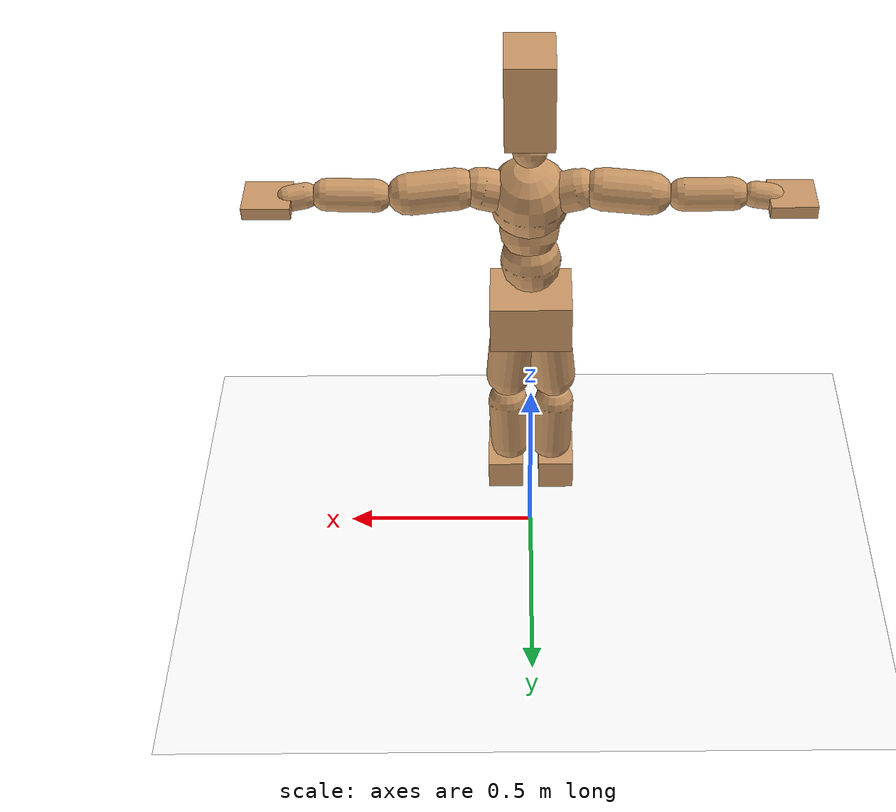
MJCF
<mujoco model="humanoid">
  <option integrator="implicitfast" />

  <visual>
    <global offwidth="1280" offheight="960" />
    <headlight active="1" ambient="0.34 0.34 0.34" diffuse="0.5 0.5 0.5" />
  </visual>

  <default>
    <joint damping="2" stiffness="2" armature="0.01" limited="true" solimplimit="0 .99 .01" />
    <geom condim="1" friction="0.7 0.005 0.0001" solimp=".99 .99 .003" solref="0.015 1" margin="0.001" rgba="0.8 0.6 .4 1" />
    <default class="smplcontact">
      <geom condim="3" friction="1. 0.005 0.0001" solref="0.015 1" solimp="0.98 0.98 0.001" priority="1" />
    </default>
    <default class="stiff_medium">
      <joint stiffness="10" />
    </default>
    <default class="stiff_medium_higher">
      <joint stiffness="50" />
    </default>
    <default class="stiff_high">
      <joint stiffness="100" />
    </default>
  </default>

  <asset>
    <texture type="skybox" builtin="gradient" rgb1="0.99 0.99 0.99" rgb2="0.608 0.828 0.892" width="100" />
    <texture builtin="flat" height="1278" mark="cross" markrgb="1 1 1" name="texgeom" random="0.01" rgb1="0.8 0.6 0.4" rgb2="0.8 0.6 0.4" type="cube" width="127" />
    <texture name="texplane" type="2d" builtin="checker" markrgb="1 1 1" rgb1="0.756 0.772 0.76" rgb2="0.6 0.6 0.6" width="100" height="100" />
    <material name="MatPlane" reflectance="0.5" texture="texplane" texrepeat="1 1" texuniform="true" />
    <material name="geom" texture="texgeom" texuniform="true" />
  </asset>

  <worldbody>
    <light name="tracking_light" pos="0 0 7" dir="0 0 -1" directional="true" cutoff="100" exponent="1" diffuse="1 1 1" specular="0.1 0.1 0.1" mode="trackcom" />
    <camera name="back" pos="0 3 2.4" xyaxes="-1 0 0 0 -1 2" mode="trackcom" />
    <camera name="side" pos="-3 0 2.4" xyaxes="0 -1 0 1 0 2" mode="trackcom" />
    <camera name="front_side" pos="-2.8 -2.8 0.8" xyaxes="0.5 -0.5 0 0.1 0.1 1" mode="trackcom" />
    <geom condim="3" name="floor" pos="0 0 0" rgba="1 1 1 1" size="100 100 .2" type="plane" material="MatPlane" />
    <body name="Pelvis" pos="-0.0018 -0.2233 0.603363" euler="90 0 0">
      <site name="Pelvis" size="0.01" />
      <freejoint name="Pelvis" />
      <geom type="box" pos="-0.0000 -0.0121 -0.0055" size="0.1069 0.0722 0.083" quat="1.0000 0.0000 0.0000 0.0000" density="3165.830099" name="Pelvis" />
      <body name="L_Hip" pos="0.0434375 -0.057125 -0.00425">
        <joint name="L_Hip_x" type="hinge" pos="0 0 0" axis="1 0 0" stiffness="4.682612346938775" range="-160.0 22.92" class="stiff_medium" damping="5.761376063259234" armature="0.0031505162487152146"/>
        <joint name="L_Hip_y" type="hinge" pos="0 0 0" axis="0 1 0" stiffness="4.729285204081632" range="-70.0 70.0" class="stiff_medium" damping="5.2271909514404244" armature="0.005777516910851338"/>
        <joint name="L_Hip_z" type="hinge" pos="0 0 0" axis="0 0 1" stiffness="4.725288673469388" range="-28.65 90.0" class="stiff_medium" damping="3.855798953286389" armature="0.003146302077085308"/>
        <geom type="capsule" density="2040.816327" fromto="0.0043125 -0.046875 -0.0005625 0.017125 -0.187625 -0.00225" size="0.0615" name="L_Hip" />
        <body name="L_Knee" pos="0.0214375 -0.2345 -0.0028125">
          <joint name="L_Knee_x" type="hinge" pos="0 0 0" axis="1 0 0" range="-5.16 171.89" damping="3.314776765383124" armature="0.003468205500974928" stiffness="0.9900423469387756"/>
          <joint name="L_Knee_y" type="hinge" pos="0 0 0" axis="0 1 0" range="-4.58 6.88" damping="4.406653617352897" armature="0.006327520325715419" stiffness="0.9590346565349543"/>
          <joint name="L_Knee_z" type="hinge" pos="0 0 0" axis="0 0 1" range="-6.88 4.58" damping="3.327252622723649" armature="0.003445606353385671" stiffness="1.0040513265306124"/>
          <geom type="capsule" density="1234.567901" fromto="-0.0016875 -0.04975 -0.0054375 -0.0068125 -0.199 -0.021875" size="0.0541" name="L_Knee" />
          <body name="L_Ankle" pos="-0.0085 -0.24875 -0.0273125">
            <joint name="L_Ankle_x" type="hinge" pos="0 0 0" axis="1 0 0" range="-45.84 45.84" class="stiff_medium" damping="3.671773608490062" armature="0.005991965080890725" stiffness="6.25"/>
            <joint name="L_Ankle_y" type="hinge" pos="0 0 0" axis="0 1 0" range="-74.48 22.92" class="stiff_medium" damping="1.8585891029846908" armature="0.006141072806637222" stiffness="6.25"/>
            <joint name="L_Ankle_z" type="hinge" pos="0 0 0" axis="0 0 1" range="-4.58 4.58" class="stiff_medium" damping="4.001717943795492" armature="0.007117220667419919" stiffness="6.25"/>
            <geom type="box" pos="0.0145625 -0.0149375 0.015125" size="0.0483 0.0464 0.085" quat="1.0000 0.0000 0.0000 0.0000" density="449.071558" name="L_Ankle" class="smplcontact" />
            <body name="L_Toe" pos="0.0165 -0.034875 0.0745625">
              <joint name="L_Toe_x" type="hinge" pos="0 0 0" axis="1 0 0" range="-91.67 22.92" armature="0.007683229914737026" damping="1.3859319891986968" stiffness="1.25"/>
              <joint name="L_Toe_y" type="hinge" pos="0 0 0" axis="0 1 0" range="-4.58 4.58" armature="0.008367648440754674" damping="1.446344395428927" stiffness="1.25"/>
              <joint name="L_Toe_z" type="hinge" pos="0 0 0" axis="0 0 1" range="-4.58 4.58" armature="0.00975150586170467" damping="1.5613700603720335" stiffness="1.25"/>
              <geom type="box" pos="-0.001875 0.0034375 0.0155" size="0.0478 0.02 0.0496" quat="1.0000 0.0000 0.0000 0.0000" density="423.206892" name="L_Toe" class="smplcontact" />
            </body>
          </body>
        </body>
      </body>
      <body name="R_Hip" pos="-0.0423125 -0.0565625 -0.0026875">
        <joint name="R_Hip_x" type="hinge" pos="0 0 0" axis="1 0 0" stiffness="4.682612346938775" range="-160.0 22.92" class="stiff_medium" damping="5.761376063259234" armature="0.0031505162487152146"/>
        <joint name="R_Hip_y" type="hinge" pos="0 0 0" axis="0 1 0" stiffness="4.729285204081632" range="-70.0 70.0" class="stiff_medium" damping="5.2271909514404244" armature="0.005777516910851338"/>
        <joint name="R_Hip_z" type="hinge" pos="0 0 0" axis="0 0 1" stiffness="4.725288673469388" range="-90.0 28.65" class="stiff_medium" damping="3.855798953286389" armature="0.003146302077085308"/>
        <geom type="capsule" density="2040.816327" fromto="-0.0048125 -0.0478125 -0.001125 -0.019125 -0.191312 -0.0044375" size="0.0606" name="R_Hip" />
        <body name="R_Knee" pos="-0.0239375 -0.239125 -0.0055625">
          <joint name="R_Knee_x" type="hinge" pos="0 0 0" axis="1 0 0" range="-5.16 171.89" damping="3.314776765383124" armature="0.003468205500974928" stiffness="0.9900423469387756"/>
          <joint name="R_Knee_y" type="hinge" pos="0 0 0" axis="0 1 0" range="-6.88 4.58" damping="4.406653617352897" armature="0.006327520325715419" stiffness="0.9590346565349543"/>
          <joint name="R_Knee_z" type="hinge" pos="0 0 0" axis="0 0 1" range="-4.58 6.88" damping="3.327252622723649" armature="0.003445606353385671" stiffness="1.0040513265306124"/>
          <geom type="capsule" density="1234.567901" fromto="0.002 -0.0498125 -0.0053125 0.007875 -0.199187 -0.021125" size="0.0541" name="R_Knee" />
          <body name="R_Ankle" pos="0.009875 -0.249 -0.0264375">
            <joint name="R_Ankle_x" type="hinge" pos="0 0 0" axis="1 0 0" range="-45.84 45.84" class="stiff_medium" damping="3.671773608490062" armature="0.005991965080890725" stiffness="6.25"/>
            <joint name="R_Ankle_y" type="hinge" pos="0 0 0" axis="0 1 0" range="-22.92 74.48" class="stiff_medium" damping="1.8585891029846908" armature="0.006141072806637222" stiffness="6.25"/>
            <joint name="R_Ankle_z" type="hinge" pos="0 0 0" axis="0 0 1" range="-4.58 4.58" class="stiff_medium" damping="4.001717943795492" armature="0.007117220667419919" stiffness="6.25"/>
            <geom type="box" pos="-0.01325 -0.010875 0.016" size="0.0483 0.0478 0.0865" quat="1.0000 0.0000 0.0000 0.0000" density="434.700981" name="R_Ankle" class="smplcontact" />
            <body name="R_Toe" pos="-0.015875 -0.0300625 0.0770625">
              <joint name="R_Toe_x" type="hinge" pos="0 0 0" axis="1 0 0" range="-91.67 22.92" armature="0.007683229914737026" damping="1.3859319891986968" stiffness="1.25"/>
              <joint name="R_Toe_y" type="hinge" pos="0 0 0" axis="0 1 0" range="-4.58 4.58" armature="0.008367648440754674" damping="1.446344395428927" stiffness="1.25"/>
              <joint name="R_Toe_z" type="hinge" pos="0 0 0" axis="0 0 1" range="-4.58 4.58" armature="0.00975150586170467" damping="1.5613700603720335" stiffness="1.25"/>
              <geom type="box" pos="0.002625 0.0028125 0.0141875" size="0.0479 0.0216 0.0493" quat="1.0000 0.0000 0.0000 0.0000" density="407.384095" name="R_Toe" class="smplcontact" />
            </body>
          </body>
        </body>
      </body>
      <body name="Torso" pos="-0.0025 0.109 -0.0267">
        <joint name="Torso_x" type="hinge" pos="0 0 0" axis="1 0 0" range="-25.78 57.3" class="stiff_medium" damping="13.810652204593474" armature="0.00909250101895923" stiffness="9.323146326530612"/>
        <joint name="Torso_y" type="hinge" pos="0 0 0" axis="0 1 0" range="-57.3 57.3" class="stiff_high" damping="14.331171543099824" armature="0.005453647751768045" stiffness="94.1491306122449"/>
        <joint name="Torso_z" type="hinge" pos="0 0 0" axis="0 0 1" range="-34.38 34.38" class="stiff_high" damping="17.29833641675788" armature="0.007846444358372215" stiffness="95.34014042553191"/>
        <geom type="capsule" density="2040.816327" fromto="0.0025 0.0608 0.0005 0.003 0.0743 0.0006" size="0.0769" name="Torso" />
        <body name="Spine" pos="0.0055 0.1352 0.0011">
          <joint name="Spine_x" type="hinge" pos="0 0 0" axis="1 0 0" stiffness="9.198122653061224" range="-25.78 57.3" class="stiff_medium" damping="13.625447932409394" armature="0.008970566343267757"/>
          <joint name="Spine_y" type="hinge" pos="0 0 0" axis="0 1 0" stiffness="9.181372040816328" range="-57.3 57.3" class="stiff_high" damping="5.644321396937274" armature="0.005421705337566874"/>
          <joint name="Spine_z" type="hinge" pos="0 0 0" axis="0 0 1" stiffness="18.1392375" range="-34.38 34.38" class="stiff_high" damping="9.559994320421612" armature="0.00699783575418983"/>
          <geom type="capsule" density="2040.816327" fromto="0.0007 0.0238 0.0114 0.0008 0.0291 0.014" size="0.0755" name="Spine" />
          <body name="Chest" pos="0.0015 0.0529 0.0254">
            <joint name="Chest_x" type="hinge" pos="0 0 0" axis="1 0 0" stiffness="8.90027425531915" range="-25.78 57.3" class="stiff_medium" damping="13.356132991200658" armature="0.00890790470102789"/>
            <joint name="Chest_y" type="hinge" pos="0 0 0" axis="0 1 0" stiffness="8.011889047619047" range="-57.3 57.3" class="stiff_high" damping="5.266225064762502" armature="0.005408588385784328"/>
            <joint name="Chest_z" type="hinge" pos="0 0 0" axis="0 0 1" stiffness="18.1318547826087" range="-34.38 34.38" class="stiff_high" damping="9.30245805793391" armature="0.0066285832124010555"/>
            <geom type="capsule" density="2040.816327" fromto="-0.0009 0.0682 -0.0173 -0.001 0.0833 -0.0212" size="0.1002" name="Chest" />
            <body name="Neck" pos="-0.0028 0.2139 -0.0429">
              <joint name="Neck_x" type="hinge" pos="0 0 0" axis="1 0 0" range="-28.65 57.3" class="stiff_medium_higher" damping="10.000000000000004" armature="0.010000000000000009" stiffness="50.0"/>
              <joint name="Neck_y" type="hinge" pos="0 0 0" axis="0 1 0" range="-40.11 40.11" class="stiff_medium_higher" damping="10.0" armature="0.01" stiffness="50.0"/>
              <joint name="Neck_z" type="hinge" pos="0 0 0" axis="0 0 1" range="-40.11 40.11" class="stiff_medium_higher" damping="10.0" armature="0.010000000000000002" stiffness="50.0"/>
              <geom type="capsule" density="1000" fromto="0.001 0.013 0.0103 0.0041 0.052 0.0411" size="0.0436" name="Neck" />
              <body name="Head" pos="0.0052 0.065 0.0513">
                <joint name="Head_x" type="hinge" pos="0 0 0" axis="1 0 0" range="-28.65 57.3" class="stiff_medium_higher" damping="2.0000000000000027" armature="0.010000000000000026" stiffness="50.0"/>
                <joint name="Head_y" type="hinge" pos="0 0 0" axis="0 1 0" range="-40.11 40.11" class="stiff_medium_higher" damping="2.0" armature="0.01" stiffness="50.0"/>
                <joint name="Head_z" type="hinge" pos="0 0 0" axis="0 0 1" range="-40.11 40.11" class="stiff_medium_higher" damping="2.0000000000000027" armature="0.010000000000000026" stiffness="50.0"/>
                <geom type="box" pos="-0.0042 0.0876 -0.0116" size="0.0606 0.1154 0.076" quat="1.0000 0.0000 0.0000 0.0000" density="1018.069894" name="Head" />
                <geom type="capsule" name="nose" size="0.02 0.01" pos="0 0.07 0.05" quat="1 0 0 0" mass="0" contype="0" conaffinity="0" />
              </body>
            </body>
            <body name="L_Thorax" pos="0.06107 0.0943175 -0.0264275">
              <joint name="L_Thorax_x" type="hinge" pos="0 0 0" axis="1 0 0" range="-10.89 4.58" class="stiff_medium_higher" damping="13.430877912506638" armature="0.0067438731053503" stiffness="33.43562346938776"/>
              <joint name="L_Thorax_y" type="hinge" pos="0 0 0" axis="0 1 0" range="-28.65 17.19" class="stiff_medium_higher" damping="11.84395870975866" armature="0.0052794554835980945" stiffness="33.21350051020408"/>
              <joint name="L_Thorax_z" type="hinge" pos="0 0 0" axis="0 0 1" range="-31.51 40.11" class="stiff_medium_higher" damping="11.842904847336026" armature="0.005278125365951001" stiffness="33.215958673469395"/>
              <geom type="capsule" density="1000" fromto="0.014105 0.0047275 -0.001395 0.05642 0.01891 -0.0055025" size="0.0521" name="L_Thorax" />
              <body name="L_Shoulder" pos="0.070525 0.0236375 -0.0068975">
                <joint name="L_Shoulder_x" type="hinge" pos="0 0 0" axis="1 0 0" range="-97.4 97.4" class="stiff_medium" damping="4.20057386962352" armature="0.0072938747131825335" stiffness="6.719801632653062"/>
                <joint name="L_Shoulder_y" type="hinge" pos="0 0 0" axis="0 1 0" range="-108.86 80.21" class="stiff_medium" damping="3.5719924695592944" armature="0.005322246430600953" stiffness="6.659223469387755"/>
                <joint name="L_Shoulder_z" type="hinge" pos="0 0 0" axis="0 0 1" range="-97.4 85.94" class="stiff_medium" damping="3.5723414695273763" armature="0.0053204314495063935" stiffness="6.662796938775511"/>
                <geom type="capsule" density="1000" fromto="0.0402225 -0.002015 -0.0042625 0.160968 -0.007905 -0.01705" size="0.0517" name="L_Shoulder" />
                <body name="L_Elbow" pos="0.20119 -0.00992 -0.0213125">
                  <joint name="L_Elbow_x" type="hinge" pos="0 0 0" axis="1 0 0" range="-17.19 4.58" damping="3.7512094390014767" armature="0.008221713445805025" stiffness="1.3692106734693876"/>
                  <joint name="L_Elbow_y" type="hinge" pos="0 0 0" axis="0 1 0" range="-180.0 17.19" damping="3.0766314110203545" armature="0.005532912421377139" stiffness="1.368633387755102"/>
                  <joint name="L_Elbow_z" type="hinge" pos="0 0 0" axis="0 0 1" range="-100.84 4.58" damping="3.075083451218571" armature="0.005523383254833454" stiffness="1.3696153673469391"/>
                  <geom type="capsule" density="1000" fromto="0.038595 0.001395 -0.000155 0.154535 0.00558 -0.0006975" size="0.0405" name="L_Elbow" />
                  <body name="L_Wrist" pos="0.19313 0.006975 -0.00093">
                    <joint name="L_Wrist_x" type="hinge" pos="0 0 0" axis="1 0 0" range="-180.0 22.92" armature="0.00860290788009024" damping="1.5994571311849128" stiffness="1.486859530612245"/>
                    <joint name="L_Wrist_y" type="hinge" pos="0 0 0" axis="0 1 0" range="-17.19 17.19" armature="0.0063354376620144825" damping="1.3682982903238996" stiffness="1.4775934285714285"/>
                    <joint name="L_Wrist_z" type="hinge" pos="0 0 0" axis="0 0 1" range="-22.92 22.92" armature="0.0062061994301847645" damping="1.3559819581986159" stiffness="1.4813309591836734"/>
                    <geom type="capsule" density="1000" fromto="0.01302 -0.00124 -0.002325 0.05208 -0.0050375 -0.0093" size="0.0318" name="L_Wrist" class="smplcontact" />
                    <body name="L_Hand" pos="0.0651 -0.006355 -0.0115475">
                      <joint name="L_Hand_x" type="hinge" pos="0 0 0" axis="1 0 0" range="-17.19 17.19" armature="0.009826007646420807" damping="1.7452972154880815" stiffness="1.55"/>
                      <joint name="L_Hand_y" type="hinge" pos="0 0 0" axis="0 1 0" range="-51.57 51.57" armature="0.007895802531703706" damping="1.5645123153328482" stiffness="1.55"/>
                      <joint name="L_Hand_z" type="hinge" pos="0 0 0" axis="0 0 1" range="-91.67 91.67" armature="0.007381279985826352" damping="1.5126786822078802" stiffness="1.55"/>
                      <geom type="box" pos="0.0382075 0.000775 -0.004495" size="0.0585 0.0158 0.0538" quat="1.0000 0.0000 0.0000 0.0000" density="400.552564" name="L_Hand" class="smplcontact" />
                    </body>
                  </body>
                </body>
              </body>
            </body>
            <body name="R_Thorax" pos="-0.063395 0.09207 -0.029915">
              <joint name="R_Thorax_x" type="hinge" pos="0 0 0" axis="1 0 0" range="-10.89 4.58" class="stiff_medium_higher" damping="13.430877912506638" armature="0.0067438731053503" stiffness="33.43562346938776"/>
              <joint name="R_Thorax_y" type="hinge" pos="0 0 0" axis="0 1 0" range="-17.19 28.65" class="stiff_medium_higher" damping="11.84395870975866" armature="0.0052794554835980945" stiffness="33.21350051020408"/>
              <joint name="R_Thorax_z" type="hinge" pos="0 0 0" axis="0 0 1" range="-40.11 31.51" class="stiff_medium_higher" damping="11.842904847336026" armature="0.005278125365951001" stiffness="33.215958673469395"/>
              <geom type="capsule" density="1000" fromto="-0.01488 0.0050375 -0.001395 -0.05952 0.02015 -0.0056575" size="0.0511" name="R_Thorax" />
              <body name="R_Shoulder" pos="-0.0744 0.025265 -0.0070525">
                <joint name="R_Shoulder_x" type="hinge" pos="0 0 0" axis="1 0 0" range="-97.4 97.4" class="stiff_medium" damping="4.20057386962352" armature="0.0072938747131825335" stiffness="6.719801632653062"/>
                <joint name="R_Shoulder_y" type="hinge" pos="0 0 0" axis="0 1 0" range="-80.21 108.86" class="stiff_medium" damping="3.5719924695592944" armature="0.005322246430600953" stiffness="6.659223469387755"/>
                <joint name="R_Shoulder_z" type="hinge" pos="0 0 0" axis="0 0 1" range="-85.94 97.4" class="stiff_medium" damping="3.5723414695273763" armature="0.0053204314495063935" stiffness="6.662796938775511"/>
                <geom type="capsule" density="1000" fromto="-0.0392925 -0.0020925 -0.0033325 -0.157325 -0.0082925 -0.0132525" size="0.0531" name="R_Shoulder" />
                <body name="R_Elbow" pos="-0.196618 -0.0103075 -0.016585">
                  <joint name="R_Elbow_x" type="hinge" pos="0 0 0" axis="1 0 0" range="-17.19 4.58" damping="3.7512094390014767" armature="0.008221713445805025" stiffness="1.3692106734693876"/>
                  <joint name="R_Elbow_y" type="hinge" pos="0 0 0" axis="0 1 0" range="-17.19 180.0" damping="3.0766314110203545" armature="0.005532912421377139" stiffness="1.368633387755102"/>
                  <joint name="R_Elbow_z" type="hinge" pos="0 0 0" axis="0 0 1" range="-4.58 100.84" damping="3.075083451218571" armature="0.005523383254833454" stiffness="1.3696153673469391"/>
                  <geom type="capsule" density="1000" fromto="-0.0396025 0.00124 -0.0008525 -0.158255 0.004805 -0.00341" size="0.0408" name="R_Elbow" />
                  <body name="R_Wrist" pos="-0.197858 0.006045 -0.00434">
                    <joint name="R_Wrist_x" type="hinge" pos="0 0 0" axis="1 0 0" range="-180.0 22.92" armature="0.00860290788009024" damping="1.5994571311849128" stiffness="1.486859530612245"/>
                    <joint name="R_Wrist_y" type="hinge" pos="0 0 0" axis="0 1 0" range="-17.19 17.19" armature="0.0063354376620144825" damping="1.3682982903238996" stiffness="1.4775934285714285"/>
                    <joint name="R_Wrist_z" type="hinge" pos="0 0 0" axis="0 0 1" range="-22.92 22.92" armature="0.0062061994301847645" damping="1.3559819581986159" stiffness="1.4813309591836734"/>
                    <geom type="capsule" density="1000" fromto="-0.0130975 -0.00093 -0.0016275 -0.0524675 -0.0037975 -0.0064325" size="0.0326" name="R_Wrist" class="smplcontact" />
                    <body name="R_Hand" pos="-0.065565 -0.0047275 -0.0079825">
                      <joint name="R_Hand_x" type="hinge" pos="0 0 0" axis="1 0 0" range="-17.19 17.19" armature="0.009826007646420807" damping="1.7452972154880815" stiffness="1.55"/>
                      <joint name="R_Hand_y" type="hinge" pos="0 0 0" axis="0 1 0" range="-51.57 51.57" armature="0.007895802531703706" damping="1.5645123153328482" stiffness="1.55"/>
                      <joint name="R_Hand_z" type="hinge" pos="0 0 0" axis="0 0 1" range="-91.67 91.67" armature="0.007381279985826352" damping="1.5126786822078802" stiffness="1.55"/>
                      <geom type="box" pos="-0.035805 -0.0006975 -0.0061225" size="0.0569 0.0164 0.0546" quat="1.0000 0.0000 0.0000 0.0000" density="403.679611" name="R_Hand" class="smplcontact" />
                    </body>
                  </body>
                </body>
              </body>
            </body>
          </body>
        </body>
      </body>
    </body>
  </worldbody>
  <actuator>
    <general name="L_Hip_x" joint="L_Hip_x" biastype="affine" gainprm="134.5455305788832" biasprm="-100.82823820114426 -84.28702224489795 -0.7681834751012312" ctrllimited="true" ctrlrange="-1 1" forcerange="-168.5740444897959 168.5740444897959" />
    <general name="L_Hip_y" joint="L_Hip_y" biastype="affine" gainprm="104.00241357711633" biasprm="0.0 -85.12713367346939 -1.045438190288085" ctrllimited="true" ctrlrange="-1 1" forcerange="-170.25426734693878 170.25426734693878" />
    <general name="L_Hip_z" joint="L_Hip_z" biastype="affine" gainprm="88.0675601736452" biasprm="45.53682947031718 -85.05519612244898 -0.7711597906572778" ctrllimited="true" ctrlrange="-1 1" forcerange="-170.11039224489795 170.11039224489795" />
    <general name="L_Knee_x" joint="L_Knee_x" biastype="affine" gainprm="137.6700859239888" biasprm="129.64548673316378 -89.1038112244898 -0.828694191345781" ctrllimited="true" ctrlrange="-1 1" forcerange="-178.2076224489796 178.2076224489796" />
    <general name="L_Knee_y" joint="L_Knee_y" biastype="affine" gainprm="8.63194770327106" biasprm="1.7324153331172283 -86.3131190881459 -1.1016634043382243" ctrllimited="true" ctrlrange="-1 1" forcerange="-172.6262381762918 172.6262381762918" />
    <general name="L_Knee_z" joint="L_Knee_z" biastype="affine" gainprm="9.03712757714746" biasprm="-1.8137341559720035 -90.36461938775511 -0.8318131556809123" ctrllimited="true" ctrlrange="-1 1" forcerange="-180.72923877551023 180.72923877551023" />
    <general name="L_Ankle_x" joint="L_Ankle_x" biastype="affine" gainprm="45.003314762673796" biasprm="0.0 -56.25 -1.223924536163354" ctrllimited="true" ctrlrange="-1 1" forcerange="-112.5 112.5" />
    <general name="L_Ankle_y" joint="L_Ankle_y" biastype="affine" gainprm="47.811113196819676" biasprm="-25.309455815482774 -56.25 -1.2390594019897938" ctrllimited="true" ctrlrange="-1 1" forcerange="-112.5 112.5" />
    <general name="L_Ankle_z" joint="L_Ankle_z" biastype="affine" gainprm="4.496404485450391" biasprm="0.0 -56.25 -1.333905981265164" ctrllimited="true" ctrlrange="-1 1" forcerange="-112.5 112.5" />
    <general name="L_Toe_x" joint="L_Toe_x" biastype="affine" gainprm="44.999387771856796" biasprm="-26.998061866787282 -45.0 -0.5543727956794787" ctrllimited="true" ctrlrange="-1 1" forcerange="-90.0 90.0" />
    <general name="L_Toe_y" joint="L_Toe_y" biastype="affine" gainprm="3.597123588360313" biasprm="0.0 -45.0 -0.5785377581715708" ctrllimited="true" ctrlrange="-1 1" forcerange="-90.0 90.0" />
    <general name="L_Toe_z" joint="L_Toe_z" biastype="affine" gainprm="3.597123588360313" biasprm="0.0 -45.0 -0.6245480241488135" ctrllimited="true" ctrlrange="-1 1" forcerange="-90.0 90.0" />
    <general name="R_Hip_x" joint="R_Hip_x" biastype="affine" gainprm="134.5455305788832" biasprm="-100.82823820114426 -84.28702224489795 -0.7681834751012312" ctrllimited="true" ctrlrange="-1 1" forcerange="-168.5740444897959 168.5740444897959" />
    <general name="R_Hip_y" joint="R_Hip_y" biastype="affine" gainprm="104.00241357711633" biasprm="0.0 -85.12713367346939 -1.045438190288085" ctrllimited="true" ctrlrange="-1 1" forcerange="-170.25426734693878 170.25426734693878" />
    <general name="R_Hip_z" joint="R_Hip_z" biastype="affine" gainprm="88.0675601736452" biasprm="-45.53682947031718 -85.05519612244898 -0.7711597906572778" ctrllimited="true" ctrlrange="-1 1" forcerange="-170.11039224489795 170.11039224489795" />
    <general name="R_Knee_x" joint="R_Knee_x" biastype="affine" gainprm="137.6700859239888" biasprm="129.64548673316378 -89.1038112244898 -0.828694191345781" ctrllimited="true" ctrlrange="-1 1" forcerange="-178.2076224489796 178.2076224489796" />
    <general name="R_Knee_y" joint="R_Knee_y" biastype="affine" gainprm="8.63194770327106" biasprm="-1.7324153331172283 -86.3131190881459 -1.1016634043382243" ctrllimited="true" ctrlrange="-1 1" forcerange="-172.6262381762918 172.6262381762918" />
    <general name="R_Knee_z" joint="R_Knee_z" biastype="affine" gainprm="9.03712757714746" biasprm="1.8137341559720035 -90.36461938775511 -0.8318131556809123" ctrllimited="true" ctrlrange="-1 1" forcerange="-180.72923877551023 180.72923877551023" />
    <general name="R_Ankle_x" joint="R_Ankle_x" biastype="affine" gainprm="45.003314762673796" biasprm="0.0 -56.25 -1.223924536163354" ctrllimited="true" ctrlrange="-1 1" forcerange="-112.5 112.5" />
    <general name="R_Ankle_y" joint="R_Ankle_y" biastype="affine" gainprm="47.811113196819676" biasprm="25.309455815482774 -56.25 -1.2390594019897938" ctrllimited="true" ctrlrange="-1 1" forcerange="-112.5 112.5" />
    <general name="R_Ankle_z" joint="R_Ankle_z" biastype="affine" gainprm="4.496404485450391" biasprm="0.0 -56.25 -1.333905981265164" ctrllimited="true" ctrlrange="-1 1" forcerange="-112.5 112.5" />
    <general name="R_Toe_x" joint="R_Toe_x" biastype="affine" gainprm="44.999387771856796" biasprm="-26.998061866787282 -45.0 -0.5543727956794787" ctrllimited="true" ctrlrange="-1 1" forcerange="-90.0 90.0" />
    <general name="R_Toe_y" joint="R_Toe_y" biastype="affine" gainprm="3.597123588360313" biasprm="0.0 -45.0 -0.5785377581715708" ctrllimited="true" ctrlrange="-1 1" forcerange="-90.0 90.0" />
    <general name="R_Toe_z" joint="R_Toe_z" biastype="affine" gainprm="3.597123588360313" biasprm="0.0 -45.0 -0.6245480241488135" ctrllimited="true" ctrlrange="-1 1" forcerange="-90.0 90.0" />
    <general name="Torso_x" joint="Torso_x" biastype="affine" gainprm="162.2249324590423" biasprm="61.54706152032995 -223.7555118367347 -3.682840587891593" ctrllimited="true" ctrlrange="-1 1" forcerange="-335.63326775510205 335.63326775510205" />
    <general name="Torso_y" joint="Torso_y" biastype="affine" gainprm="225.974557843997" biasprm="0.0 -225.95791346938776 -2.8662343086199646" ctrllimited="true" ctrlrange="-1 1" forcerange="-338.93687020408163 338.93687020408163" />
    <general name="Torso_z" joint="Torso_z" biastype="affine" gainprm="137.29991517080745" biasprm="0.0 -228.8163370212766 -3.459667283351576" ctrllimited="true" ctrlrange="-1 1" forcerange="-343.2245055319149 343.2245055319149" />
    <general name="Spine_x" joint="Spine_x" biastype="affine" gainprm="160.04949122128795" biasprm="60.721713568789056 -220.7549436734694 -3.6334527819758384" ctrllimited="true" ctrlrange="-1 1" forcerange="-331.1324155102041 331.1324155102041" />
    <general name="Spine_y" joint="Spine_y" biastype="affine" gainprm="220.36916048323718" biasprm="0.0 -220.35292897959184 -2.822160698468637" ctrllimited="true" ctrlrange="-1 1" forcerange="-330.52939346938774 330.52939346938774" />
    <general name="Spine_z" joint="Spine_z" biastype="affine" gainprm="130.61213036278338" biasprm="0.0 -217.67085 -3.186664773473871" ctrllimited="true" ctrlrange="-1 1" forcerange="-326.506275 326.506275" />
    <general name="Chest_x" joint="Chest_x" biastype="affine" gainprm="154.86685925194476" biasprm="58.7554574340551 -213.6065821276596 -3.5616354643201755" ctrllimited="true" ctrlrange="-1 1" forcerange="-320.4098731914894 320.4098731914894" />
    <general name="Chest_y" joint="Chest_y" biastype="affine" gainprm="192.29950114859662" biasprm="0.0 -192.28533714285712 -2.633112532381251" ctrllimited="true" ctrlrange="-1 1" forcerange="-288.4280057142857 288.4280057142857" />
    <general name="Chest_z" joint="Chest_z" biastype="affine" gainprm="130.55897088205305" biasprm="0.0 -217.58225739130438 -3.1008193526446366" ctrllimited="true" ctrlrange="-1 1" forcerange="-326.37338608695654 326.37338608695654" />
    <general name="Neck_x" joint="Neck_x" biastype="affine" gainprm="27.00198885760427" biasprm="9.000662952534757 -36.0 -0.8000000000000004" ctrllimited="true" ctrlrange="-1 1" forcerange="-72.0 72.0" />
    <general name="Neck_y" joint="Neck_y" biastype="affine" gainprm="25.20185626709732" biasprm="0.0 -36.0 -0.8" ctrllimited="true" ctrlrange="-1 1" forcerange="-72.0 72.0" />
    <general name="Neck_z" joint="Neck_z" biastype="affine" gainprm="25.20185626709732" biasprm="0.0 -36.0 -0.8" ctrllimited="true" ctrlrange="-1 1" forcerange="-72.0 72.0" />
    <general name="Head_x" joint="Head_x" biastype="affine" gainprm="18.001325905069514" biasprm="6.000441968356505 -24.0 -0.8000000000000012" ctrllimited="true" ctrlrange="-1 1" forcerange="-48.0 48.0" />
    <general name="Head_y" joint="Head_y" biastype="affine" gainprm="16.801237511398213" biasprm="0.0 -24.0 -0.8" ctrllimited="true" ctrlrange="-1 1" forcerange="-48.0 48.0" />
    <general name="Head_z" joint="Head_z" biastype="affine" gainprm="16.801237511398213" biasprm="0.0 -24.0 -0.8000000000000012" ctrllimited="true" ctrlrange="-1 1" forcerange="-48.0 48.0" />
    <general name="L_Thorax_x" joint="L_Thorax_x" biastype="affine" gainprm="10.833239714349121" biasprm="-4.4187293211081435 -80.24549632653061 -1.0744702330005311" ctrllimited="true" ctrlrange="-1 1" forcerange="-160.49099265306123 160.49099265306123" />
    <general name="L_Thorax_y" joint="L_Thorax_y" biastype="affine" gainprm="31.887309180393395" biasprm="-7.971827295098349 -79.71240122448978 -0.9475166967806928" ctrllimited="true" ctrlrange="-1 1" forcerange="-159.42480244897956 159.42480244897956" />
    <general name="L_Thorax_z" joint="L_Thorax_z" biastype="affine" gainprm="49.8241297438119" biasprm="5.98279134036278 -79.71830081632655 -0.9474323877868822" ctrllimited="true" ctrlrange="-1 1" forcerange="-159.4366016326531 159.4366016326531" />
    <general name="L_Shoulder_x" joint="L_Shoulder_x" biastype="affine" gainprm="54.831990872567324" biasprm="0.0 -32.2550478367347 -1.1201530318996054" ctrllimited="true" ctrlrange="-1 1" forcerange="-64.5100956734694 64.5100956734694" />
    <general name="L_Shoulder_y" joint="L_Shoulder_y" biastype="affine" gainprm="52.739356038732126" biasprm="-7.9916567964757785 -31.964272653061222 -0.952531325215812" ctrllimited="true" ctrlrange="-1 1" forcerange="-63.928545306122444 63.928545306122444" />
    <general name="L_Shoulder_z" joint="L_Shoulder_z" biastype="affine" gainprm="51.16846795221352" biasprm="-3.1983781102452724 -31.98142530612245 -0.9526243918739671" ctrllimited="true" ctrlrange="-1 1" forcerange="-63.9628506122449 63.9628506122449" />
    <general name="L_Elbow_x" joint="L_Elbow_x" biastype="affine" gainprm="9.364370274135227" biasprm="-5.424194265358073 -49.291584244897955 -0.6001935102402363" ctrllimited="true" ctrlrange="-1 1" forcerange="-98.58316848979591 98.58316848979591" />
    <general name="L_Elbow_y" joint="L_Elbow_y" biastype="affine" gainprm="84.78555943298619" biasprm="-70.00323003846282 -49.27080195918367 -0.49226102576325675" ctrllimited="true" ctrlrange="-1 1" forcerange="-98.54160391836734 98.54160391836734" />
    <general name="L_Elbow_z" joint="L_Elbow_z" biastype="affine" gainprm="45.359839041363344" biasprm="-41.41849844547179 -49.306153224489805 -0.4920133521949714" ctrllimited="true" ctrlrange="-1 1" forcerange="-98.61230644897961 98.61230644897961" />
    <general name="L_Wrist_x" joint="L_Wrist_x" biastype="affine" gainprm="15.797683800581504" biasprm="-12.228958069166877 -8.92115718367347 -0.6397828524739652" ctrllimited="true" ctrlrange="-1 1" forcerange="-17.84231436734694 17.84231436734694" />
    <general name="L_Wrist_y" joint="L_Wrist_y" biastype="affine" gainprm="2.659864086290334" biasprm="0.0 -8.86556057142857 -0.5473193161295599" ctrllimited="true" ctrlrange="-1 1" forcerange="-17.73112114285714 17.73112114285714" />
    <general name="L_Wrist_z" joint="L_Wrist_z" biastype="affine" gainprm="3.5554561826046047" biasprm="0.0 -8.88798575510204 -0.5423927832794464" ctrllimited="true" ctrlrange="-1 1" forcerange="-17.77597151020408 17.77597151020408" />
    <general name="L_Hand_x" joint="L_Hand_x" biastype="affine" gainprm="2.7902055152857757" biasprm="0.0 -9.3 -0.6981188861952327" ctrllimited="true" ctrlrange="-1 1" forcerange="-18.6 18.6" />
    <general name="L_Hand_y" joint="L_Hand_y" biastype="affine" gainprm="8.370616545857324" biasprm="0.0 -9.3 -0.6258049261331393" ctrllimited="true" ctrlrange="-1 1" forcerange="-18.6 18.6" />
    <general name="L_Hand_z" joint="L_Hand_z" biastype="affine" gainprm="14.879472925319778" biasprm="0.0 -9.3 -0.6050714728831521" ctrllimited="true" ctrlrange="-1 1" forcerange="-18.6 18.6" />
    <general name="R_Thorax_x" joint="R_Thorax_x" biastype="affine" gainprm="10.833239714349121" biasprm="-4.4187293211081435 -80.24549632653061 -1.0744702330005311" ctrllimited="true" ctrlrange="-1 1" forcerange="-160.49099265306123 160.49099265306123" />
    <general name="R_Thorax_y" joint="R_Thorax_y" biastype="affine" gainprm="31.887309180393395" biasprm="7.971827295098343 -79.71240122448978 -0.9475166967806928" ctrllimited="true" ctrlrange="-1 1" forcerange="-159.42480244897956 159.42480244897956" />
    <general name="R_Thorax_z" joint="R_Thorax_z" biastype="affine" gainprm="49.8241297438119" biasprm="-5.98279134036278 -79.71830081632655 -0.9474323877868822" ctrllimited="true" ctrlrange="-1 1" forcerange="-159.4366016326531 159.4366016326531" />
    <general name="R_Shoulder_x" joint="R_Shoulder_x" biastype="affine" gainprm="54.831990872567324" biasprm="0.0 -32.2550478367347 -1.1201530318996054" ctrllimited="true" ctrlrange="-1 1" forcerange="-64.5100956734694 64.5100956734694" />
    <general name="R_Shoulder_y" joint="R_Shoulder_y" biastype="affine" gainprm="52.739356038732126" biasprm="7.9916567964757785 -31.964272653061222 -0.952531325215812" ctrllimited="true" ctrlrange="-1 1" forcerange="-63.928545306122444 63.928545306122444" />
    <general name="R_Shoulder_z" joint="R_Shoulder_z" biastype="affine" gainprm="51.16846795221352" biasprm="3.1983781102452653 -31.98142530612245 -0.9526243918739671" ctrllimited="true" ctrlrange="-1 1" forcerange="-63.9628506122449 63.9628506122449" />
    <general name="R_Elbow_x" joint="R_Elbow_x" biastype="affine" gainprm="9.364370274135227" biasprm="-5.424194265358073 -49.291584244897955 -0.6001935102402363" ctrllimited="true" ctrlrange="-1 1" forcerange="-98.58316848979591 98.58316848979591" />
    <general name="R_Elbow_y" joint="R_Elbow_y" biastype="affine" gainprm="84.78555943298619" biasprm="70.00323003846282 -49.27080195918367 -0.49226102576325675" ctrllimited="true" ctrlrange="-1 1" forcerange="-98.54160391836734 98.54160391836734" />
    <general name="R_Elbow_z" joint="R_Elbow_z" biastype="affine" gainprm="45.359839041363344" biasprm="41.41849844547178 -49.306153224489805 -0.4920133521949714" ctrllimited="true" ctrlrange="-1 1" forcerange="-98.61230644897961 98.61230644897961" />
    <general name="R_Wrist_x" joint="R_Wrist_x" biastype="affine" gainprm="15.797683800581504" biasprm="-12.228958069166877 -8.92115718367347 -0.6397828524739652" ctrllimited="true" ctrlrange="-1 1" forcerange="-17.84231436734694 17.84231436734694" />
    <general name="R_Wrist_y" joint="R_Wrist_y" biastype="affine" gainprm="2.659864086290334" biasprm="0.0 -8.86556057142857 -0.5473193161295599" ctrllimited="true" ctrlrange="-1 1" forcerange="-17.73112114285714 17.73112114285714" />
    <general name="R_Wrist_z" joint="R_Wrist_z" biastype="affine" gainprm="3.5554561826046047" biasprm="0.0 -8.88798575510204 -0.5423927832794464" ctrllimited="true" ctrlrange="-1 1" forcerange="-17.77597151020408 17.77597151020408" />
    <general name="R_Hand_x" joint="R_Hand_x" biastype="affine" gainprm="2.7902055152857757" biasprm="0.0 -9.3 -0.6981188861952327" ctrllimited="true" ctrlrange="-1 1" forcerange="-18.6 18.6" />
    <general name="R_Hand_y" joint="R_Hand_y" biastype="affine" gainprm="8.370616545857324" biasprm="0.0 -9.3 -0.6258049261331393" ctrllimited="true" ctrlrange="-1 1" forcerange="-18.6 18.6" />
    <general name="R_Hand_z" joint="R_Hand_z" biastype="affine" gainprm="14.879472925319778" biasprm="0.0 -9.3 -0.6050714728831521" ctrllimited="true" ctrlrange="-1 1" forcerange="-18.6 18.6" />
  </actuator>
  <contact>
    <exclude body1="Torso" body2="Chest" />
    <exclude body1="Head" body2="Chest" />
    <exclude body1="R_Knee" body2="R_Toe" />
    <exclude body1="R_Knee" body2="L_Ankle" />
    <exclude body1="R_Knee" body2="L_Toe" />
    <exclude body1="L_Knee" body2="L_Toe" />
    <exclude body1="L_Knee" body2="R_Ankle" />
    <exclude body1="L_Knee" body2="R_Toe" />
    <exclude body1="L_Shoulder" body2="Chest" />
    <exclude body1="R_Shoulder" body2="Chest" />
  </contact>
  <sensor>
    <framelinvel name="sensor_Pelvis_framelinvel" objtype="xbody" objname="Pelvis" />
    <framelinvel name="sensor_L_Hip_framelinvel" objtype="xbody" objname="L_Hip" />
    <framelinvel name="sensor_L_Knee_framelinvel" objtype="xbody" objname="L_Knee" />
    <framelinvel name="sensor_L_Ankle_framelinvel" objtype="xbody" objname="L_Ankle" />
    <framelinvel name="sensor_L_Toe_framelinvel" objtype="xbody" objname="L_Toe" />
    <framelinvel name="sensor_R_Hip_framelinvel" objtype="xbody" objname="R_Hip" />
    <framelinvel name="sensor_R_Knee_framelinvel" objtype="xbody" objname="R_Knee" />
    <framelinvel name="sensor_R_Ankle_framelinvel" objtype="xbody" objname="R_Ankle" />
    <framelinvel name="sensor_R_Toe_framelinvel" objtype="xbody" objname="R_Toe" />
    <framelinvel name="sensor_Torso_framelinvel" objtype="xbody" objname="Torso" />
    <framelinvel name="sensor_Spine_framelinvel" objtype="xbody" objname="Spine" />
    <framelinvel name="sensor_Chest_framelinvel" objtype="xbody" objname="Chest" />
    <framelinvel name="sensor_Neck_framelinvel" objtype="xbody" objname="Neck" />
    <framelinvel name="sensor_Head_framelinvel" objtype="xbody" objname="Head" />
    <framelinvel name="sensor_L_Thorax_framelinvel" objtype="xbody" objname="L_Thorax" />
    <framelinvel name="sensor_L_Shoulder_framelinvel" objtype="xbody" objname="L_Shoulder" />
    <framelinvel name="sensor_L_Elbow_framelinvel" objtype="xbody" objname="L_Elbow" />
    <framelinvel name="sensor_L_Wrist_framelinvel" objtype="xbody" objname="L_Wrist" />
    <framelinvel name="sensor_L_Hand_framelinvel" objtype="xbody" objname="L_Hand" />
    <framelinvel name="sensor_R_Thorax_framelinvel" objtype="xbody" objname="R_Thorax" />
    <framelinvel name="sensor_R_Shoulder_framelinvel" objtype="xbody" objname="R_Shoulder" />
    <framelinvel name="sensor_R_Elbow_framelinvel" objtype="xbody" objname="R_Elbow" />
    <framelinvel name="sensor_R_Wrist_framelinvel" objtype="xbody" objname="R_Wrist" />
    <framelinvel name="sensor_R_Hand_framelinvel" objtype="xbody" objname="R_Hand" />
    <frameangvel name="sensor_Pelvis_frameangvel" objtype="xbody" objname="Pelvis" />
    <frameangvel name="sensor_L_Hip_frameangvel" objtype="xbody" objname="L_Hip" />
    <frameangvel name="sensor_L_Knee_frameangvel" objtype="xbody" objname="L_Knee" />
    <frameangvel name="sensor_L_Ankle_frameangvel" objtype="xbody" objname="L_Ankle" />
    <frameangvel name="sensor_L_Toe_frameangvel" objtype="xbody" objname="L_Toe" />
    <frameangvel name="sensor_R_Hip_frameangvel" objtype="xbody" objname="R_Hip" />
    <frameangvel name="sensor_R_Knee_frameangvel" objtype="xbody" objname="R_Knee" />
    <frameangvel name="sensor_R_Ankle_frameangvel" objtype="xbody" objname="R_Ankle" />
    <frameangvel name="sensor_R_Toe_frameangvel" objtype="xbody" objname="R_Toe" />
    <frameangvel name="sensor_Torso_frameangvel" objtype="xbody" objname="Torso" />
    <frameangvel name="sensor_Spine_frameangvel" objtype="xbody" objname="Spine" />
    <frameangvel name="sensor_Chest_frameangvel" objtype="xbody" objname="Chest" />
    <frameangvel name="sensor_Neck_frameangvel" objtype="xbody" objname="Neck" />
    <frameangvel name="sensor_Head_frameangvel" objtype="xbody" objname="Head" />
    <frameangvel name="sensor_L_Thorax_frameangvel" objtype="xbody" objname="L_Thorax" />
    <frameangvel name="sensor_L_Shoulder_frameangvel" objtype="xbody" objname="L_Shoulder" />
    <frameangvel name="sensor_L_Elbow_frameangvel" objtype="xbody" objname="L_Elbow" />
    <frameangvel name="sensor_L_Wrist_frameangvel" objtype="xbody" objname="L_Wrist" />
    <frameangvel name="sensor_L_Hand_frameangvel" objtype="xbody" objname="L_Hand" />
    <frameangvel name="sensor_R_Thorax_frameangvel" objtype="xbody" objname="R_Thorax" />
    <frameangvel name="sensor_R_Shoulder_frameangvel" objtype="xbody" objname="R_Shoulder" />
    <frameangvel name="sensor_R_Elbow_frameangvel" objtype="xbody" objname="R_Elbow" />
    <frameangvel name="sensor_R_Wrist_frameangvel" objtype="xbody" objname="R_Wrist" />
    <frameangvel name="sensor_R_Hand_frameangvel" objtype="xbody" objname="R_Hand" />
    <subtreelinvel name="Chest_subtreelinvel" body="Chest" />
    <gyro name="Pelvis_gyro" site="Pelvis" />
  </sensor>
</mujoco>
